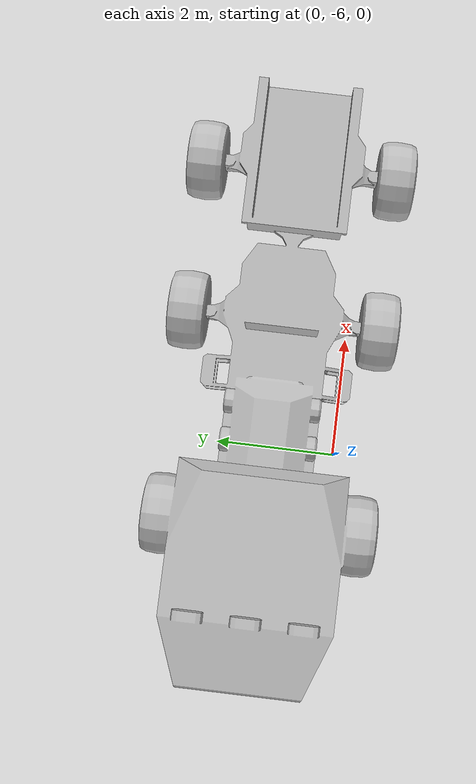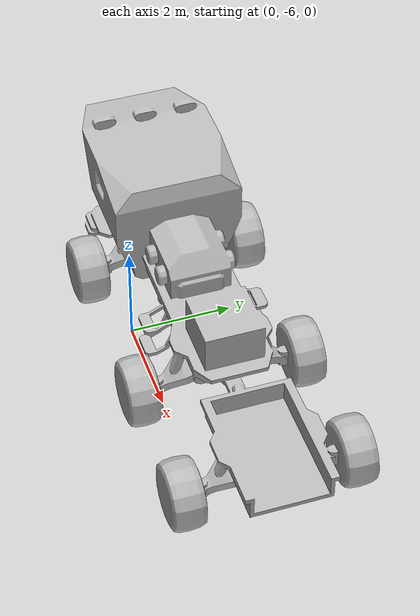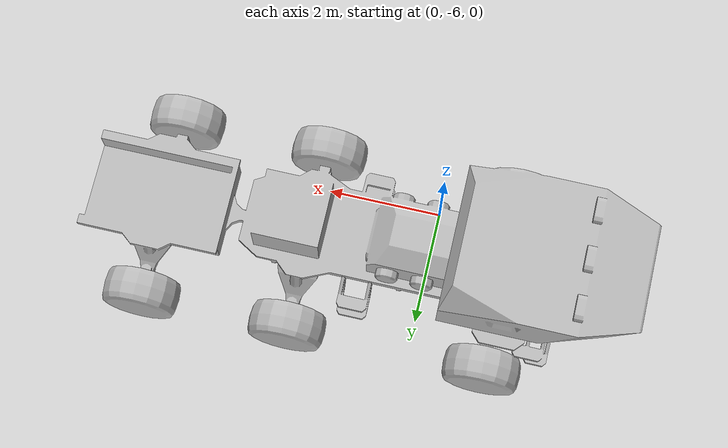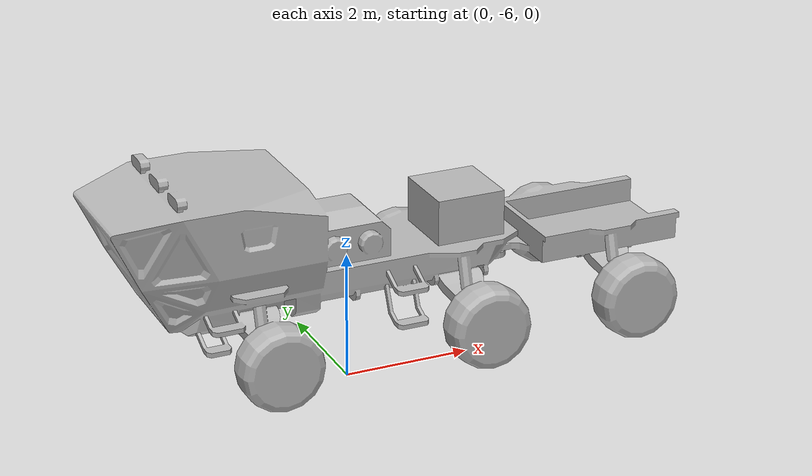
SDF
<sdf version="1.6">
 <world name="SRC_finals">
  <include>
   <pose>0.38928123667892844
        -4.898459903700507
        0
        0
        0
        -1.5707963267948968</pose>
   <uri>model://mars_explorer</uri>
  </include>
 </world>
</sdf>
